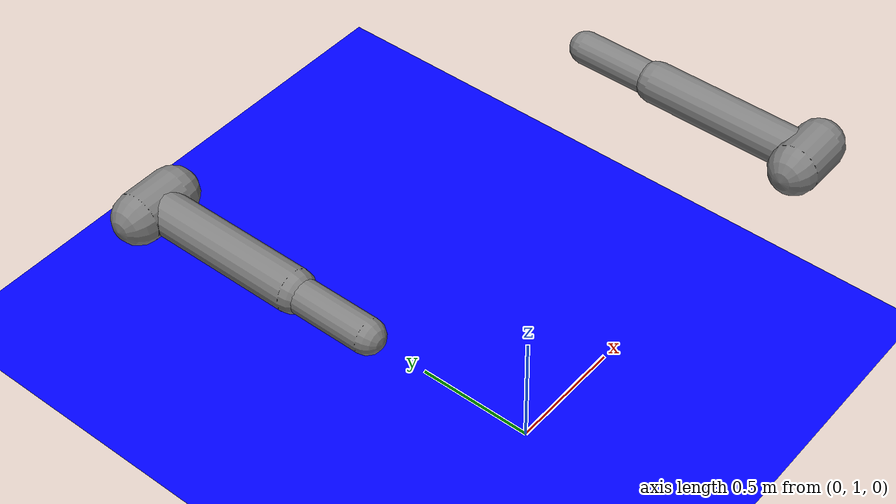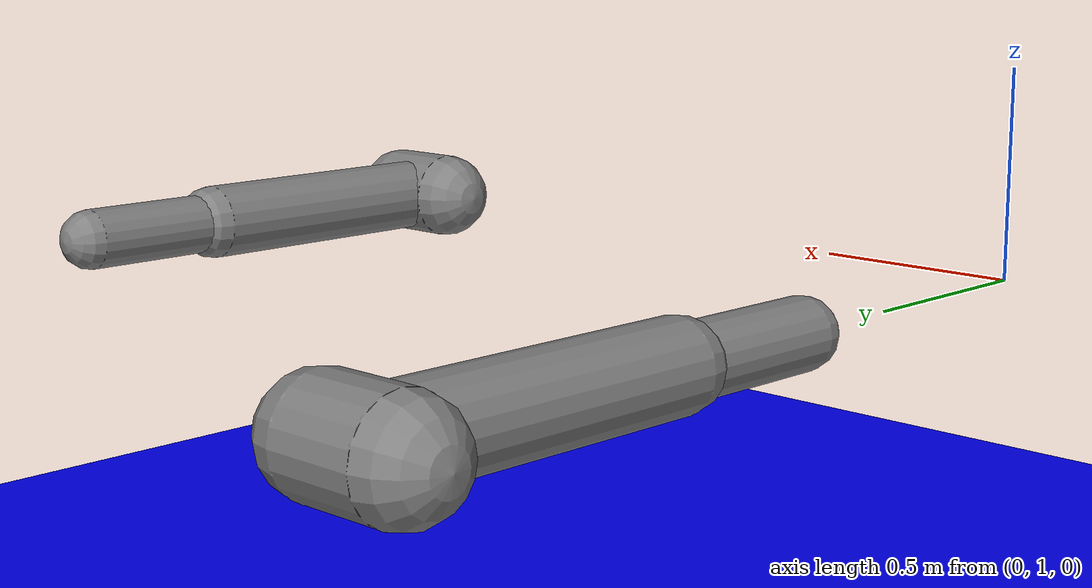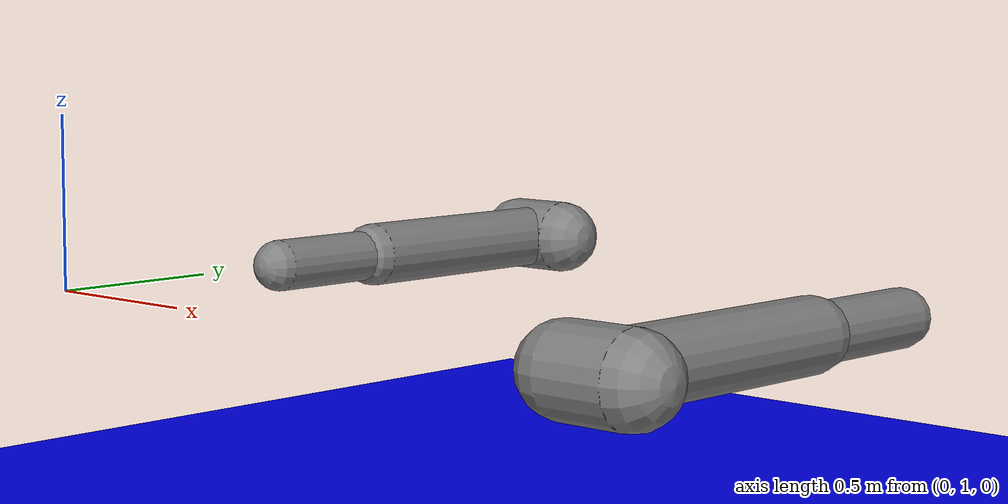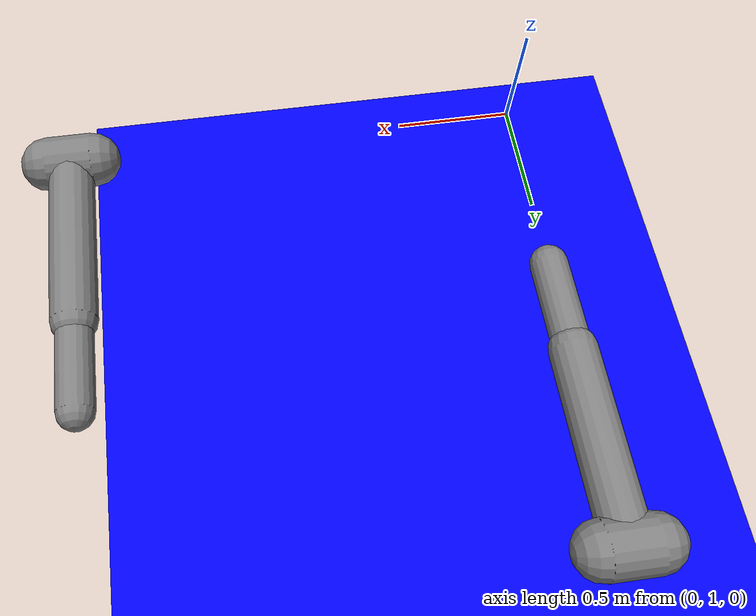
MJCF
<mujoco model="arm3d">
    <compiler inertiafromgeom="true" angle="radian" coordinate="local" />
    <option timestep="0.01" gravity="0 0 0" iterations="20" integrator="Euler" />

    <default>
        <joint armature='0.04' damping="1" limited="true"/>
        <geom friction=".8 .1 .1" density="300" margin="0.002" condim="1" contype="1" conaffinity="1"/>
    </default>

    <worldbody>
        <body name="palm" pos="2 1 0">
            <geom name="shoulder1"  type="capsule" fromto="-0.1 0 0 0.1 0 0" size="0.12"/>
            <body name="proximal_1" pos="0 0 0">
                <geom name="capsuleproximal"  type="capsule"  fromto="0 0 0 0 0.8 0" size="0.1" contype="1" conaffinity="1"/>
                <joint name="proximal_j_2" type="hinge" pos="0 0 0" axis="0 0 1" range="-0.75 .75" damping="1.0" />
                <joint name="proximal_j_1" type="hinge" pos="0 0 0" axis="1 0 0" range="-0.9 1.0" damping="1.0" />
                <body name="distal_1" pos="0 0.8 0">
                    <joint name="distal_j_1" type="hinge" pos="0 0 0" axis="1 0 0" range="-1. 0" damping="1.0"/>
                    <geom name="capsuledistal" type="capsule"  fromto="0 0 0 0 0.4 0" size="0.08" contype="1" conaffinity="1"/>
                 </body>
              </body>
        </body>
        <body name="palm_2" pos="0. 3.0 0.">
            <geom name="shoulder2"  type="capsule" fromto="-0.1 0 0 0.1 0 0" size="0.12"/>
            <body name="proximal_1_2" pos="0 0 0">
                <geom name="capsuleproximal_2"  type="capsule"  fromto="0 0 0 0 -0.8 0" size="0.1" contype="1" conaffinity="1"/>
                <joint name="proximal_j_2_2" type="hinge" pos="0 0 0" axis="0 0 1" range="-0.75 .75" damping="1.0" />
                <joint name="proximal_j_1_2" type="hinge" pos="0 0 0" axis="1 0 0" range="-0.9 1.0" damping="1.0" />
                <body name="distal_1_2" pos="0 -.8 0">
                    <joint name="distal_j_1_2" type="hinge" pos="0 0 0" axis="1 0 0" range="0. 1." damping="1.0"/>
                    <geom name="capsuledistal_2" type="capsule"  fromto="0 0 0 0 -0.4 0" size="0.08" contype="1" conaffinity="1"/>
                </body>
            </body>
         </body>
          <geom name="planetable" rgba="0. 0. 1. 1" type="plane" pos="0 2 -0.6"  size="2 2 .1" density="100" contype="1" condim="1" conaffinity="1"/>
    </worldbody>

    <actuator>
        <motor joint="proximal_j_1" ctrlrange="-2 2" ctrllimited="true"/>
        <motor joint="proximal_j_2" ctrlrange="-2 2" ctrllimited="true"/>
        <motor joint="distal_j_1" ctrlrange="-2 2" ctrllimited="true"/>
        <motor joint="proximal_j_1_2" ctrlrange="-2 2" ctrllimited="true"/>
        <motor joint="proximal_j_2_2" ctrlrange="-2 2" ctrllimited="true"/>
        <motor joint="distal_j_1_2" ctrlrange="-2 2" ctrllimited="true"/>
    </actuator>
</mujoco>
